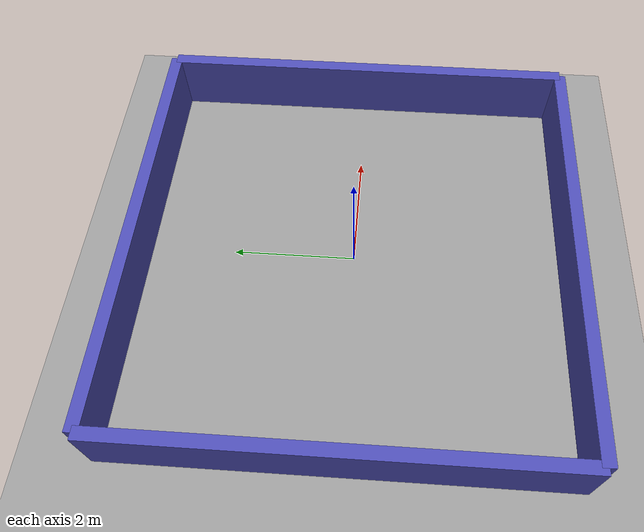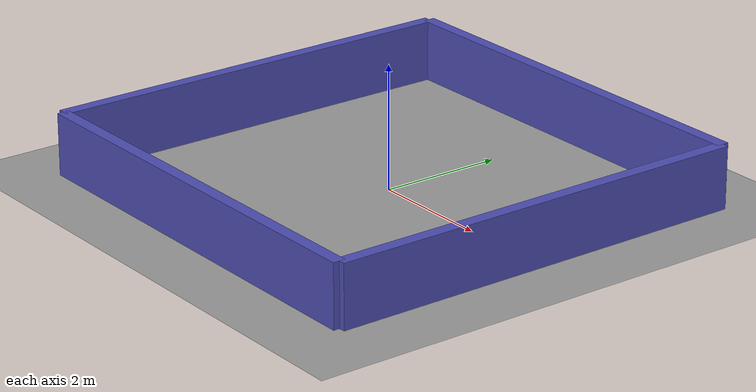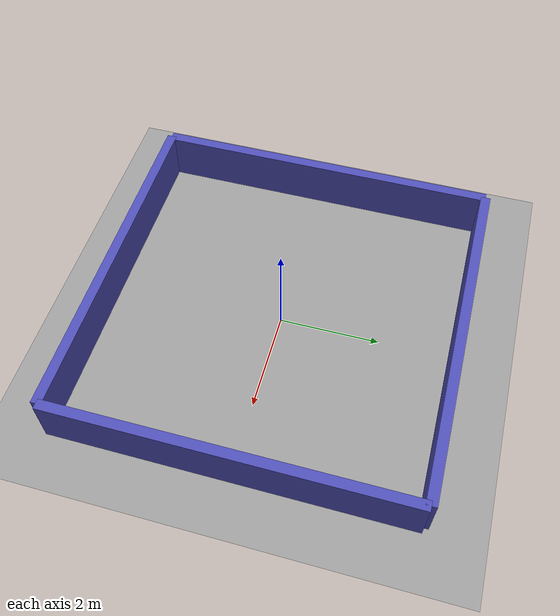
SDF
<?xml version="1.0" ?>
<!--
  P2 隔离验证场景：7×7m 空房间，无障碍（单 component 同心环）
  = room_7x7.sdf 删掉 box_a / box_b。
  用途：隔离验证 RPP 能否跟同心环 + 覆盖率公式 + 时间戳修复, 排除多 component
        段间连接缺陷的干扰。墙 ±3.5 给 SLAM 特征, 机器人 spawn 原点。
-->
<sdf version="1.10">
  <world name="room_nobox">
    <scene>
      <ambient>0.4 0.4 0.4 1</ambient>
      <background>0.7 0.7 0.7 1</background>
    </scene>

    <physics name="1ms" type="ignored">
      <max_step_size>0.001</max_step_size>
      <real_time_factor>1</real_time_factor>
    </physics>

    <plugin filename="gz-sim-physics-system" name="gz::sim::systems::Physics"></plugin>
    <plugin filename="gz-sim-user-commands-system" name="gz::sim::systems::UserCommands"></plugin>
    <plugin filename="gz-sim-scene-broadcaster-system" name="gz::sim::systems::SceneBroadcaster"></plugin>

    <light type="directional" name="sun">
      <pose>0 0 10 0 0 0</pose>
      <intensity>0.8</intensity>
      <cast_shadows>true</cast_shadows>
    </light>

    <model name="ground_plane">
      <static>true</static>
      <link name="link">
        <collision name="collision">
          <geometry>
            <plane><normal>0 0 1</normal><size>40 40</size></plane>
          </geometry>
        </collision>
        <visual name="visual">
          <geometry>
            <plane><normal>0 0 1</normal><size>40 40</size></plane>
          </geometry>
          <material>
            <ambient>0.6 0.6 0.6 1</ambient>
            <diffuse>0.6 0.6 0.6 1</diffuse>
            <specular>0.2 0.2 0.2 1</specular>
          </material>
        </visual>
      </link>
    </model>

    <!-- 围墙：7x7 房间（墙中心在 ±3.5，墙长 7） -->
    <model name="walls">
      <static>true</static>
      <link name="link">
        <collision name="w_n"><pose>0 3.5 0.5 0 0 0</pose><geometry><box><size>7 0.2 1</size></box></geometry></collision>
        <visual name="vw_n"><pose>0 3.5 0.5 0 0 0</pose><geometry><box><size>7 0.2 1</size></box></geometry><material><ambient>0.3 0.3 0.7 1</ambient><diffuse>0.3 0.3 0.7 1</diffuse><specular>0.1 0.1 0.1 1</specular></material></visual>
        <collision name="w_s"><pose>0 -3.5 0.5 0 0 0</pose><geometry><box><size>7 0.2 1</size></box></geometry></collision>
        <visual name="vw_s"><pose>0 -3.5 0.5 0 0 0</pose><geometry><box><size>7 0.2 1</size></box></geometry><material><ambient>0.3 0.3 0.7 1</ambient><diffuse>0.3 0.3 0.7 1</diffuse><specular>0.1 0.1 0.1 1</specular></material></visual>
        <collision name="w_e"><pose>3.5 0 0.5 0 0 0</pose><geometry><box><size>0.2 7 1</size></box></geometry></collision>
        <visual name="vw_e"><pose>3.5 0 0.5 0 0 0</pose><geometry><box><size>0.2 7 1</size></box></geometry><material><ambient>0.3 0.3 0.7 1</ambient><diffuse>0.3 0.3 0.7 1</diffuse><specular>0.1 0.1 0.1 1</specular></material></visual>
        <collision name="w_w"><pose>-3.5 0 0.5 0 0 0</pose><geometry><box><size>0.2 7 1</size></box></geometry></collision>
        <visual name="vw_w"><pose>-3.5 0 0.5 0 0 0</pose><geometry><box><size>0.2 7 1</size></box></geometry><material><ambient>0.3 0.3 0.7 1</ambient><diffuse>0.3 0.3 0.7 1</diffuse><specular>0.1 0.1 0.1 1</specular></material></visual>
      </link>
    </model>

  </world>
</sdf>
